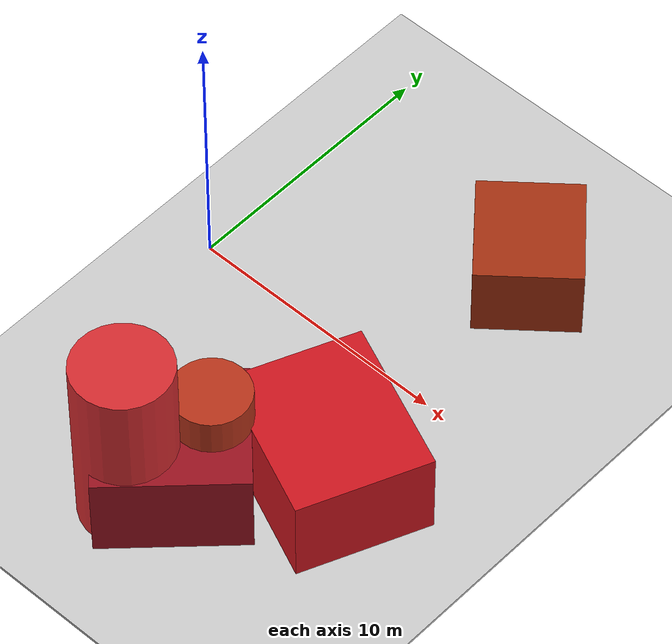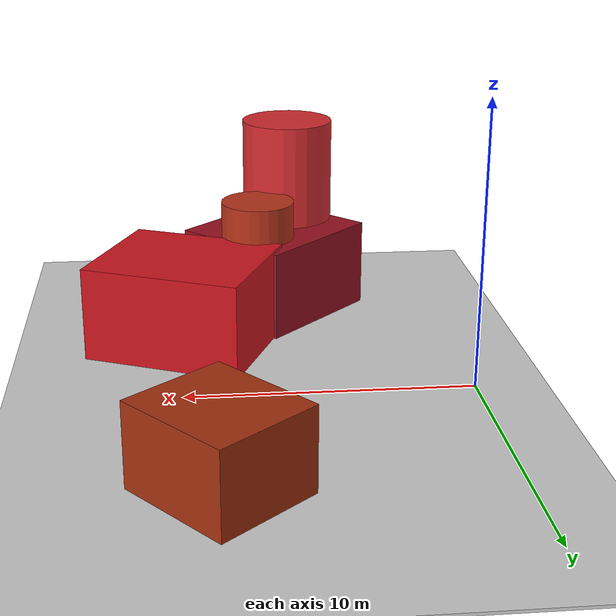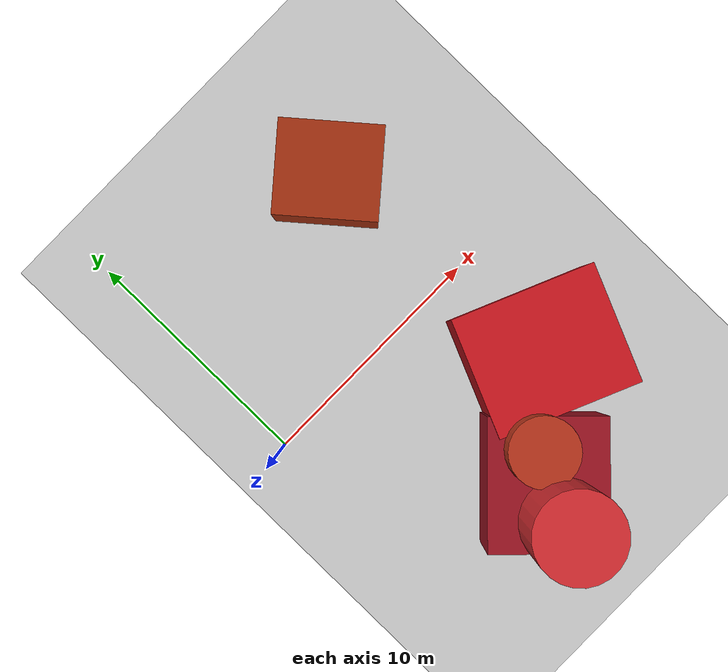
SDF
<?xml version="1.0" encoding="UTF-8"?>
<sdf version="1.9">
  <world name="map">
    <physics name="1ms" type="ignored">
      <max_step_size>0.001</max_step_size>
      <real_time_factor>1.0</real_time_factor>
    </physics>

    <plugin filename="libgz-sim-physics-system.so" name="gz::sim::systems::Physics"/>
    <plugin filename="libgz-sim-sensors-system.so" name="gz::sim::systems::Sensors">
      <render_engine>ogre2</render_engine>
    </plugin>
    <plugin filename="libgz-sim-contact-system" name="gz::sim::systems::Contact"/>
    <plugin filename="libgz-sim-imu-system" name="gz::sim::systems::Imu"/>
    <plugin filename="gz-sim-air-pressure-system" name="gz::sim::systems::AirPressure"/>
    <plugin filename="gz-sim-magnetometer-system" name="gz::sim::systems::Magnetometer"/>
    <plugin filename="gz-sim-navsat-system" name="gz::sim::systems::NavSat"/>
    <plugin filename="libgz-sim-scene-broadcaster-system.so" name="gz::sim::systems::SceneBroadcaster"/>
    <plugin filename="libgz-sim-user-commands-system.so" name="gz::sim::systems::UserCommands"/>

    <gravity>0 0 -9.8</gravity>
    <magnetic_field>6e-06 2.3e-05 -4.2e-05</magnetic_field>
    <atmosphere type="adiabatic"/>
    <scene>
      <grid>false</grid>
      <ambient>0.4 0.4 0.4 1</ambient>
      <background>0.7 0.7 0.7 1</background>
      <shadows>true</shadows>
    </scene>
    <model name="ground_plane">
      <static>true</static>
      <link name="link">
        <pose>0 0 -0.05 0 0 0</pose>
        <collision name="collision">
          <geometry>
            <box>
              <size>500 500 0.1</size>
            </box>
          </geometry>
        </collision>
        <visual name="visual">
          <geometry>
            <box>
              <size>500 500 0.1</size>
            </box>
          </geometry>
          <material>
            <ambient>0.8 0.8 0.8 1</ambient>
            <diffuse>0.8 0.8 0.8 1</diffuse>
            <specular>0.8 0.8 0.8 1</specular>
          </material>
        </visual>
        <enable_wind>false</enable_wind>
      </link>
      <pose>0 0 0 0 -0 0</pose>
      <self_collide>false</self_collide>
    </model>
    <light name="sunUTC" type="directional">
      <pose>0 0 500 0 -0 0</pose>
      <cast_shadows>true</cast_shadows>
      <intensity>1</intensity>
      <direction>0.001 0.625 -0.78</direction>
      <diffuse>0.904 0.904 0.904 1</diffuse>
      <specular>0.271 0.271 0.271 1</specular>
      <attenuation>
        <range>2000</range>
        <linear>0</linear>
        <constant>1</constant>
        <quadratic>0</quadratic>
      </attenuation>
      <spot>
        <inner_angle>0</inner_angle>
        <outer_angle>0</outer_angle>
        <falloff>0</falloff>
      </spot>
    </light>
    <spherical_coordinates>
      <surface_model>EARTH_WGS84</surface_model>
      <world_frame_orientation>ENU</world_frame_orientation>
      <latitude_deg>50.823469</latitude_deg>
      <longitude_deg>4.394371</longitude_deg>
      <elevation>0</elevation>
    </spherical_coordinates>

    <!-- BEGIN GENERATED OBSTACLES -->
    <model name="random_cylinder_1">
      <static>true</static>
      <pose>5.6 -9.617 3.632 0 0 -1.471</pose>
      <link name="link">
        <collision name="collision">
          <geometry>
            <cylinder>
              <radius>1.751</radius>
              <length>7.265</length>
            </cylinder>
          </geometry>
        </collision>
        <visual name="visual">
          <geometry>
            <cylinder>
              <radius>1.751</radius>
              <length>7.265</length>
            </cylinder>
          </geometry>
          <material>
            <ambient>0.838 0.171 0.188 1</ambient>
            <diffuse>0.838 0.171 0.188 1</diffuse>
          </material>
        </visual>
      </link>
    </model>

    <model name="random_cylinder_2">
      <static>true</static>
      <pose>6.956 -7.034 2.358 0 0 -1.075</pose>
      <link name="link">
        <collision name="collision">
          <geometry>
            <cylinder>
              <radius>1.384</radius>
              <length>4.715</length>
            </cylinder>
          </geometry>
        </collision>
        <visual name="visual">
          <geometry>
            <cylinder>
              <radius>1.384</radius>
              <length>4.715</length>
            </cylinder>
          </geometry>
          <material>
            <ambient>0.721 0.204 0.104 1</ambient>
            <diffuse>0.721 0.204 0.104 1</diffuse>
          </material>
        </visual>
      </link>
    </model>

    <model name="random_box_3">
      <static>true</static>
      <pose>8.983 6.229 1.414 0 0 -2.442</pose>
      <link name="link">
        <collision name="collision">
          <geometry>
            <box>
              <size>3.753 4.15 2.828</size>
            </box>
          </geometry>
        </collision>
        <visual name="visual">
          <geometry>
            <box>
              <size>3.753 4.15 2.828</size>
            </box>
          </geometry>
          <material>
            <ambient>0.645 0.19 0.065 1</ambient>
            <diffuse>0.645 0.19 0.065 1</diffuse>
          </material>
        </visual>
      </link>
    </model>

    <model name="random_box_4">
      <static>true</static>
      <pose>9.812 -4.584 1.713 0 0 2.731</pose>
      <link name="link">
        <collision name="collision">
          <geometry>
            <box>
              <size>5.852 4.9 3.426</size>
            </box>
          </geometry>
        </collision>
        <visual name="visual">
          <geometry>
            <box>
              <size>5.852 4.9 3.426</size>
            </box>
          </geometry>
          <material>
            <ambient>0.805 0.085 0.121 1</ambient>
            <diffuse>0.805 0.085 0.121 1</diffuse>
          </material>
        </visual>
      </link>
    </model>

    <model name="random_box_5">
      <static>true</static>
      <pose>6.22 -8.225 1.656 0 0 -0.794</pose>
      <link name="link">
        <collision name="collision">
          <geometry>
            <box>
              <size>4.688 5.252 3.312</size>
            </box>
          </geometry>
        </collision>
        <visual name="visual">
          <geometry>
            <box>
              <size>4.688 5.252 3.312</size>
            </box>
          </geometry>
          <material>
            <ambient>0.604 0.071 0.128 1</ambient>
            <diffuse>0.604 0.071 0.128 1</diffuse>
          </material>
        </visual>
      </link>
    </model>
    <!-- END GENERATED OBSTACLES -->
       </world>
</sdf>
